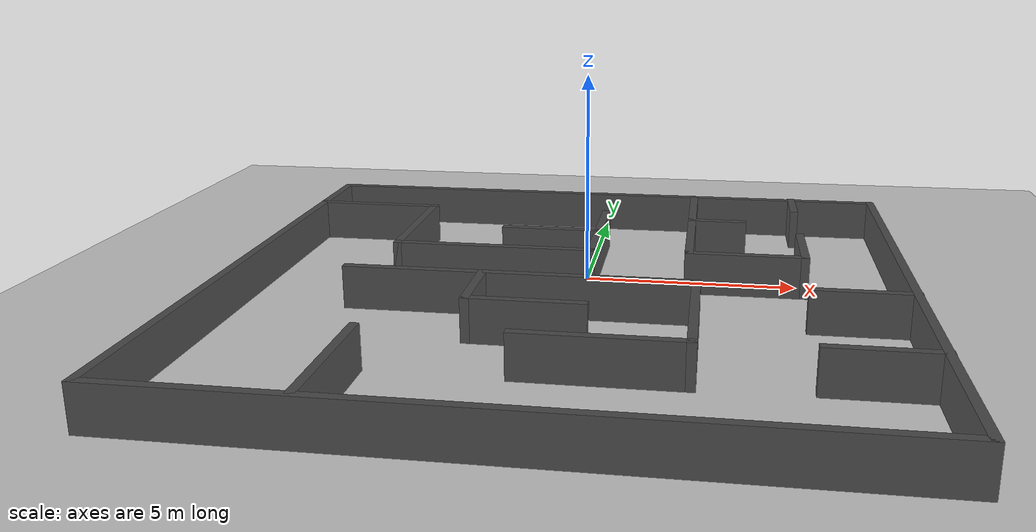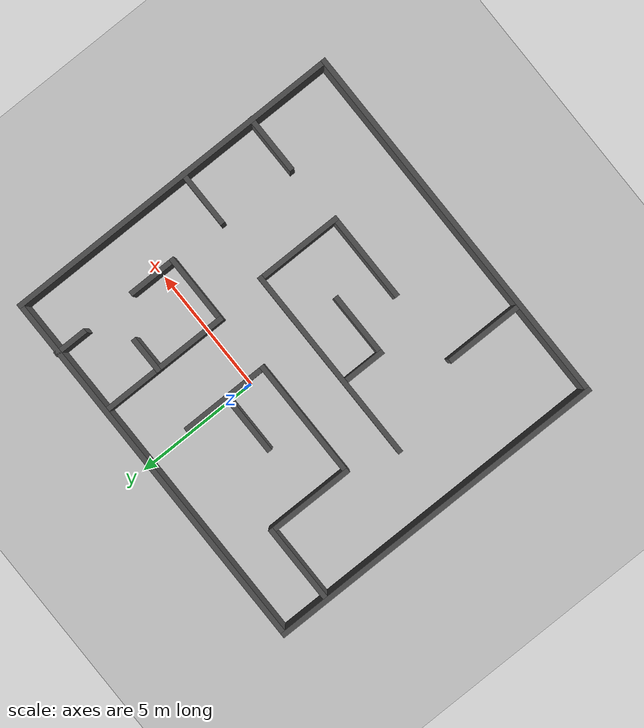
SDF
<sdf version="1.7">
 <world name="default">
  <light name="sun" type="directional">
   <pose>0 0 10 0 -0 0</pose>
   <diffuse>0.8 0.8 0.8 1</diffuse>
   <specular>0.2 0.2 0.2 1</specular>
   <attenuation>
    <range>1000</range>
    <constant>0.9</constant>
    <linear>0.01</linear>
    <quadratic>0.001</quadratic>
   </attenuation>
   <direction>-0.5 0.1 -0.9</direction>
   <spot><inner_angle>0</inner_angle><outer_angle>0</outer_angle><falloff>0</falloff></spot>
  </light>
  <model name="ground_plane">
   <static>1</static>
   <link name="link">
    <collision name="collision">
     <geometry><plane><normal>0 0 1</normal><size>100 100</size></plane></geometry>
     <surface><friction><ode><mu>100</mu><mu2>50</mu2></ode></friction></surface>
    </collision>
    <visual name="visual">
     <cast_shadows>0</cast_shadows>
     <geometry><plane><normal>0 0 1</normal><size>100 100</size></plane></geometry>
     <material>
      <script><uri>file://media/materials/scripts/gazebo.material</uri><name>Gazebo/Grey</name></script>
     </material>
    </visual>
    <velocity_decay><linear>0</linear><angular>0</angular></velocity_decay>
   </link>
  </model>
  <physics type="ode">
   <max_step_size>0.001</max_step_size>
   <real_time_factor>1</real_time_factor>
   <real_time_update_rate>1000</real_time_update_rate>
  </physics>
  <scene><ambient>0.4 0.4 0.4 1</ambient><background>0.7 0.7 0.7 1</background><shadows>1</shadows></scene>
  <spherical_coordinates>
   <surface_model>EARTH_WGS84</surface_model>
   <latitude_deg>0</latitude_deg>
   <longitude_deg>0</longitude_deg>
   <elevation>0</elevation>
   <heading_deg>0</heading_deg>
  </spherical_coordinates>
  <model name="taller3">
   <link name="Wall_101">
    <collision name="Wall_101_Collision">
     <geometry><box><size>1.37705 0.2 1</size></box></geometry>
     <pose>0 0 0.5 0 -0 0</pose>
    </collision>
    <visual name="Wall_101_Visual">
     <pose>0 0 0.5 0 -0 0</pose>
     <geometry><box><size>1.37705 0.2 1</size></box></geometry>
     <material>
      <script><uri>file://media/materials/scripts/gazebo.material</uri><name>Gazebo/DarkGrey</name></script>
     </material>
    </visual>
    <velocity_decay><linear>0</linear><angular>0</angular></velocity_decay>
    <pose>5.15447 4.00615 0 0 0 -1.5708</pose>
   </link>
   <link name="Wall_103">
    <collision name="Wall_103_Collision">
     <geometry><box><size>1.48406 0.2 1</size></box></geometry>
     <pose>0 0 0.5 0 -0 0</pose>
    </collision>
    <visual name="Wall_103_Visual">
     <pose>0 0 0.5 0 -0 0</pose>
     <geometry><box><size>1.48406 0.2 1</size></box></geometry>
     <material>
      <script><uri>file://media/materials/scripts/gazebo.material</uri><name>Gazebo/DarkGrey</name></script>
     </material>
    </visual>
    <velocity_decay><linear>0</linear><angular>0</angular></velocity_decay>
    <pose>3.12138 2.18706 0 0 -0 0</pose>
   </link>
   <link name="Wall_69">
    <collision name="Wall_69_Collision">
     <geometry><box><size>13.9976 0.2 1</size></box></geometry>
     <pose>0 0 0.5 0 -0 0</pose>
    </collision>
    <visual name="Wall_69_Visual">
     <pose>0 0 0.5 0 -0 0</pose>
     <geometry><box><size>13.9976 0.2 1</size></box></geometry>
     <material>
      <script><uri>file://media/materials/scripts/gazebo.material</uri><name>Gazebo/DarkGrey</name></script>
     </material>
    </visual>
    <velocity_decay><linear>0</linear><angular>0</angular></velocity_decay>
    <pose>-7.64501 -2.34615 0 0 0 -1.5708</pose>
   </link>
   <link name="Wall_70">
    <collision name="Wall_70_Collision">
     <geometry><box><size>15.1297 0.2 1</size></box></geometry>
     <pose>0 0 0.5 0 -0 0</pose>
    </collision>
    <visual name="Wall_70_Visual">
     <pose>0 0 0.5 0 -0 0</pose>
     <geometry><box><size>15.1297 0.2 1</size></box></geometry>
     <material>
      <script><uri>file://media/materials/scripts/gazebo.material</uri><name>Gazebo/DarkGrey</name></script>
     </material>
    </visual>
    <velocity_decay><linear>0</linear><angular>0</angular></velocity_decay>
    <pose>-0.180143 -9.24496 0 0 -0 0</pose>
   </link>
   <link name="Wall_71">
    <collision name="Wall_71_Collision">
     <geometry><box><size>13.9976 0.2 1</size></box></geometry>
     <pose>0 0 0.5 0 -0 0</pose>
    </collision>
    <visual name="Wall_71_Visual">
     <pose>0 0 0.5 0 -0 0</pose>
     <geometry><box><size>13.9976 0.2 1</size></box></geometry>
     <material>
      <script><uri>file://media/materials/scripts/gazebo.material</uri><name>Gazebo/DarkGrey</name></script>
     </material>
    </visual>
    <velocity_decay><linear>0</linear><angular>0</angular></velocity_decay>
    <pose>7.28473 -2.34615 0 0 -0 1.5708</pose>
   </link>
   <link name="Wall_72">
    <collision name="Wall_72_Collision">
     <geometry><box><size>14.9882 0.2 1</size></box></geometry>
     <pose>0 0 0.5 0 -0 0</pose>
    </collision>
    <visual name="Wall_72_Visual">
     <pose>0 0 0.5 0 -0 0</pose>
     <geometry><box><size>14.9882 0.2 1</size></box></geometry>
     <material>
      <script><uri>file://media/materials/scripts/gazebo.material</uri><name>Gazebo/DarkGrey</name></script>
     </material>
    </visual>
    <velocity_decay><linear>0</linear><angular>0</angular></velocity_decay>
    <pose>-0.109386 4.55267 0 0 -0 3.14159</pose>
   </link>
   <link name="Wall_75">
    <collision name="Wall_75_Collision">
     <geometry><box><size>8.01136 0.2 1</size></box></geometry>
     <pose>0 0 0.5 0 -0 0</pose>
    </collision>
    <visual name="Wall_75_Visual">
     <pose>0 0 0.5 0 -0 0</pose>
     <geometry><box><size>8.01136 0.2 1</size></box></geometry>
     <material>
      <script><uri>file://media/materials/scripts/gazebo.material</uri><name>Gazebo/DarkGrey</name></script>
     </material>
    </visual>
    <velocity_decay><linear>0</linear><angular>0</angular></velocity_decay>
    <pose>-1.21233 -2.68167 0 0 -0 0</pose>
   </link>
   <link name="Wall_76">
    <collision name="Wall_76_Collision">
     <geometry><box><size>3.57066 0.2 1</size></box></geometry>
     <pose>0 0 0.5 0 -0 0</pose>
    </collision>
    <visual name="Wall_76_Visual">
     <pose>0 0 0.5 0 -0 0</pose>
     <geometry><box><size>3.57066 0.2 1</size></box></geometry>
     <material>
      <script><uri>file://media/materials/scripts/gazebo.material</uri><name>Gazebo/DarkGrey</name></script>
     </material>
    </visual>
    <velocity_decay><linear>0</linear><angular>0</angular></velocity_decay>
    <pose>2.69336 -4.367 0 0 0 -1.5708</pose>
   </link>
   <link name="Wall_77">
    <collision name="Wall_77_Collision">
     <geometry><box><size>3.62416 0.2 1</size></box></geometry>
     <pose>0 0 0.5 0 -0 0</pose>
    </collision>
    <visual name="Wall_77_Visual">
     <pose>0 0 0.5 0 -0 0</pose>
     <geometry><box><size>3.62416 0.2 1</size></box></geometry>
     <material>
      <script><uri>file://media/materials/scripts/gazebo.material</uri><name>Gazebo/DarkGrey</name></script>
     </material>
    </visual>
    <velocity_decay><linear>0</linear><angular>0</angular></velocity_decay>
    <pose>0.981276 -6.05232 0 0 -0 3.14159</pose>
   </link>
   <link name="Wall_81">
    <collision name="Wall_81_Collision">
     <geometry><box><size>1.85858 0.2 1</size></box></geometry>
     <pose>0 0 0.5 0 -0 0</pose>
    </collision>
    <visual name="Wall_81_Visual">
     <pose>0 0 0.5 0 -0 0</pose>
     <geometry><box><size>1.85858 0.2 1</size></box></geometry>
     <material>
      <script><uri>file://media/materials/scripts/gazebo.material</uri><name>Gazebo/DarkGrey</name></script>
     </material>
    </visual>
    <velocity_decay><linear>0</linear><angular>0</angular></velocity_decay>
    <pose>-2.01486 -3.51096 0 0 0 -1.5708</pose>
   </link>
   <link name="Wall_82">
    <collision name="Wall_82_Collision">
     <geometry><box><size>2.66112 0.2 1</size></box></geometry>
     <pose>0 0 0.5 0 -0 0</pose>
    </collision>
    <visual name="Wall_82_Visual">
     <pose>0 0 0.5 0 -0 0</pose>
     <geometry><box><size>2.66112 0.2 1</size></box></geometry>
     <material>
      <script><uri>file://media/materials/scripts/gazebo.material</uri><name>Gazebo/DarkGrey</name></script>
     </material>
    </visual>
    <velocity_decay><linear>0</linear><angular>0</angular></velocity_decay>
    <pose>-0.784307 -4.34024 0 0 -0 0</pose>
   </link>
   <link name="Wall_84">
    <collision name="Wall_84_Collision">
     <geometry><box><size>2.3401 0.2 1</size></box></geometry>
     <pose>0 0 0.5 0 -0 0</pose>
    </collision>
    <visual name="Wall_84_Visual">
     <pose>0 0 0.5 0 -0 0</pose>
     <geometry><box><size>2.3401 0.2 1</size></box></geometry>
     <material>
      <script><uri>file://media/materials/scripts/gazebo.material</uri><name>Gazebo/DarkGrey</name></script>
     </material>
    </visual>
    <velocity_decay><linear>0</linear><angular>0</angular></velocity_decay>
    <pose>6.22452 -2.84217 0 0 -0 3.14159</pose>
   </link>
   <link name="Wall_86">
    <collision name="Wall_86_Collision">
     <geometry><box><size>3.19614 0.2 1</size></box></geometry>
     <pose>0 0 0.5 0 -0 0</pose>
    </collision>
    <visual name="Wall_86_Visual">
     <pose>0 0 0.5 0 -0 0</pose>
     <geometry><box><size>3.19614 0.2 1</size></box></geometry>
     <material>
      <script><uri>file://media/materials/scripts/gazebo.material</uri><name>Gazebo/DarkGrey</name></script>
     </material>
    </visual>
    <velocity_decay><linear>0</linear><angular>0</angular></velocity_decay>
    <pose>-3.78045 -7.6574 0 0 -0 1.5708</pose>
   </link>
   <link name="Wall_88">
    <collision name="Wall_88_Collision">
     <geometry><box><size>2.3936 0.2 1</size></box></geometry>
     <pose>0 0 0.5 0 -0 0</pose>
    </collision>
    <visual name="Wall_88_Visual">
     <pose>0 0 0.5 0 -0 0</pose>
     <geometry><box><size>2.3936 0.2 1</size></box></geometry>
     <material>
      <script><uri>file://media/materials/scripts/gazebo.material</uri><name>Gazebo/DarkGrey</name></script>
     </material>
    </visual>
    <velocity_decay><linear>0</linear><angular>0</angular></velocity_decay>
    <pose>6.19777 -5.94532 0 0 -0 3.14159</pose>
   </link>
   <link name="Wall_90">
    <collision name="Wall_90_Collision">
     <geometry><box><size>3.30315 0.2 1</size></box></geometry>
     <pose>0 0 0.5 0 -0 0</pose>
    </collision>
    <visual name="Wall_90_Visual">
     <pose>0 0 0.5 0 -0 0</pose>
     <geometry><box><size>3.30315 0.2 1</size></box></geometry>
     <material>
      <script><uri>file://media/materials/scripts/gazebo.material</uri><name>Gazebo/DarkGrey</name></script>
     </material>
    </visual>
    <velocity_decay><linear>0</linear><angular>0</angular></velocity_decay>
    <pose>-6.08105 2.61508 0 0 -0 0</pose>
   </link>
   <link name="Wall_91">
    <collision name="Wall_91_Collision">
     <geometry><box><size>3.57066 0.2 1</size></box></geometry>
     <pose>0 0 0.5 0 -0 0</pose>
    </collision>
    <visual name="Wall_91_Visual">
     <pose>0 0 0.5 0 -0 0</pose>
     <geometry><box><size>3.57066 0.2 1</size></box></geometry>
     <material>
      <script><uri>file://media/materials/scripts/gazebo.material</uri><name>Gazebo/DarkGrey</name></script>
     </material>
    </visual>
    <velocity_decay><linear>0</linear><angular>0</angular></velocity_decay>
    <pose>-4.52948 0.929753 0 0 0 -1.5708</pose>
   </link>
   <link name="Wall_92">
    <collision name="Wall_92_Collision">
     <geometry><box><size>4.90822 0.2 1</size></box></geometry>
     <pose>0 0 0.5 0 -0 0</pose>
    </collision>
    <visual name="Wall_92_Visual">
     <pose>0 0 0.5 0 -0 0</pose>
     <geometry><box><size>4.90822 0.2 1</size></box></geometry>
     <material>
      <script><uri>file://media/materials/scripts/gazebo.material</uri><name>Gazebo/DarkGrey</name></script>
     </material>
    </visual>
    <velocity_decay><linear>0</linear><angular>0</angular></velocity_decay>
    <pose>-2.17537 -0.755576 0 0 -0 0</pose>
   </link>
   <link name="Wall_93">
    <collision name="Wall_93_Collision">
     <geometry><box><size>3.62416 0.2 1</size></box></geometry>
     <pose>0 0 0.5 0 -0 0</pose>
    </collision>
    <visual name="Wall_93_Visual">
     <pose>0 0 0.5 0 -0 0</pose>
     <geometry><box><size>3.62416 0.2 1</size></box></geometry>
     <material>
      <script><uri>file://media/materials/scripts/gazebo.material</uri><name>Gazebo/DarkGrey</name></script>
     </material>
    </visual>
    <velocity_decay><linear>0</linear><angular>0</angular></velocity_decay>
    <pose>0.178738 0.956504 0 0 -0 1.5708</pose>
   </link>
   <link name="Wall_95">
    <collision name="Wall_95_Collision">
     <geometry><box><size>2.44711 0.2 1</size></box></geometry>
     <pose>0 0 0.5 0 -0 0</pose>
    </collision>
    <visual name="Wall_95_Visual">
     <pose>0 0 0.5 0 -0 0</pose>
     <geometry><box><size>2.44711 0.2 1</size></box></geometry>
     <material>
      <script><uri>file://media/materials/scripts/gazebo.material</uri><name>Gazebo/DarkGrey</name></script>
     </material>
    </visual>
    <velocity_decay><linear>0</linear><angular>0</angular></velocity_decay>
    <pose>-1.05182 0.903002 0 0 -0 3.14159</pose>
   </link>
   <link name="Wall_97">
    <collision name="Wall_97_Collision">
     <geometry><box><size>5.28274 0.2 1</size></box></geometry>
     <pose>0 0 0.5 0 -0 0</pose>
    </collision>
    <visual name="Wall_97_Visual">
     <pose>0 0 0.5 0 -0 0</pose>
     <geometry><box><size>5.28274 0.2 1</size></box></geometry>
     <material>
      <script><uri>file://media/materials/scripts/gazebo.material</uri><name>Gazebo/DarkGrey</name></script>
     </material>
    </visual>
    <velocity_decay><linear>0</linear><angular>0</angular></velocity_decay>
    <pose>2.47935 1.8928 0 0 0 -1.5708</pose>
   </link>
   <link name="Wall_98">
    <collision name="Wall_98_Collision">
     <geometry><box><size>2.87513 0.2 1</size></box></geometry>
     <pose>0 0 0.5 0 -0 0</pose>
    </collision>
    <visual name="Wall_98_Visual">
     <pose>0 0 0.5 0 -0 0</pose>
     <geometry><box><size>2.87513 0.2 1</size></box></geometry>
     <material>
      <script><uri>file://media/materials/scripts/gazebo.material</uri><name>Gazebo/DarkGrey</name></script>
     </material>
    </visual>
    <velocity_decay><linear>0</linear><angular>0</angular></velocity_decay>
    <pose>3.81691 -0.648571 0 0 -0 0</pose>
   </link>
   <link name="Wall_99">
    <collision name="Wall_99_Collision">
     <geometry><box><size>2.01909 0.2 1</size></box></geometry>
     <pose>0 0 0.5 0 -0 0</pose>
    </collision>
    <visual name="Wall_99_Visual">
     <pose>0 0 0.5 0 -0 0</pose>
     <geometry><box><size>2.01909 0.2 1</size></box></geometry>
     <material>
      <script><uri>file://media/materials/scripts/gazebo.material</uri><name>Gazebo/DarkGrey</name></script>
     </material>
    </visual>
    <velocity_decay><linear>0</linear><angular>0</angular></velocity_decay>
    <pose>5.15447 0.260972 0 0 -0 1.5708</pose>
   </link>
   <static>1</static>
  </model>
  <gravity>0 0 -9.8</gravity>
  <magnetic_field>6e-06 2.3e-05 -4.2e-05</magnetic_field>
  <atmosphere type="adiabatic"/>
 </world>
</sdf>
